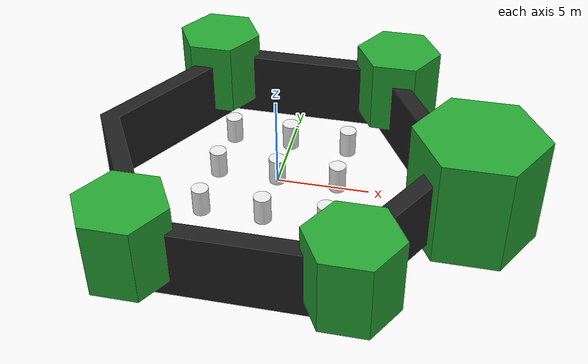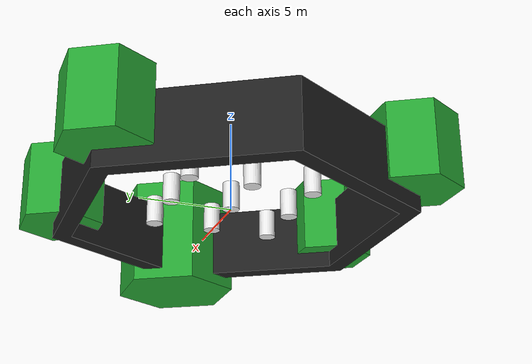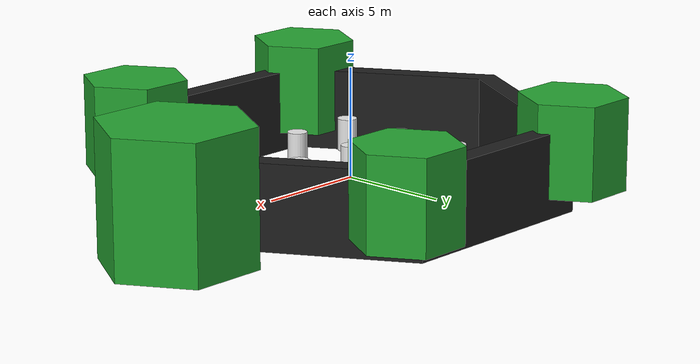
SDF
<sdf version='1.5'>
    <!-- Draw Circle -->
    <model name='ros_symbol'>
      <static>1</static>
      <link name='symbol'>
        <collision name='one_one'>
          <pose>-3.3 -3.3 0.75 0 0 0</pose>
          <geometry>
            <cylinder>
              <radius>0.45</radius>
              <length>1.5</length>
            </cylinder>
          </geometry>
          <max_contacts>10</max_contacts>
          <surface>
            <bounce/>
            <friction>
              <ode/>
            </friction>
            <contact>
              <ode/>
            </contact>
          </surface>
        </collision>

        <visual name='one_one'>
          <pose>-3.3 -3.3 0.75 0 0 0</pose>
          <geometry>
            <cylinder>
              <radius>0.45</radius>
              <length>1.5</length>
            </cylinder>
          </geometry>
          <material>
            <script>
              <uri>file://media/materials/scripts/gazebo.material</uri>
              <name>Gazebo/White</name>
            </script>
          </material>
        </visual>

        <collision name='one_two'>
          <pose>-3.3 0 0.75 0 0 0</pose>
          <geometry>
            <cylinder>
              <radius>0.45</radius>
              <length>1.5</length>
            </cylinder>
          </geometry>
          <max_contacts>10</max_contacts>
          <surface>
            <bounce/>
            <friction>
              <ode/>
            </friction>
            <contact>
              <ode/>
            </contact>
          </surface>
        </collision>

        <visual name='one_two'>
          <pose>-3.3 0 0.75 0 0 0</pose>
          <geometry>
            <cylinder>
              <radius>0.45</radius>
              <length>1.5</length>
            </cylinder>
          </geometry>
          <material>
            <script>
              <uri>file://media/materials/scripts/gazebo.material</uri>
              <name>Gazebo/White</name>
            </script>
          </material>
        </visual>

        <collision name='one_three'>
          <pose>-3.3 3.3 0.75 0 0 0</pose>
          <geometry>
            <cylinder>
              <radius>0.45</radius>
              <length>1.5</length>
            </cylinder>
          </geometry>
          <max_contacts>10</max_contacts>
          <surface>
            <bounce/>
            <friction>
              <ode/>
            </friction>
            <contact>
              <ode/>
            </contact>
          </surface>
        </collision>

        <visual name='one_three'>
          <pose>-3.3 3.3 0.75 0 0 0</pose>
          <geometry>
            <cylinder>
              <radius>0.45</radius>
              <length>1.5</length>
            </cylinder>
          </geometry>
          <material>
            <script>
              <uri>file://media/materials/scripts/gazebo.material</uri>
              <name>Gazebo/White</name>
            </script>
          </material>
        </visual>

        <collision name='two_one'>
          <pose>0 -3.3 0.75 0 0 0</pose>
          <geometry>
            <cylinder>
              <radius>0.45</radius>
              <length>1.5</length>
            </cylinder>
          </geometry>
          <max_contacts>10</max_contacts>
          <surface>
            <bounce/>
            <friction>
              <ode/>
            </friction>
            <contact>
              <ode/>
            </contact>
          </surface>
        </collision>

        <visual name='two_one'>
          <pose>0 -3.3 0.75 0 0 0</pose>
          <geometry>
            <cylinder>
              <radius>0.45</radius>
              <length>1.5</length>
            </cylinder>
          </geometry>
          <material>
            <script>
              <uri>file://media/materials/scripts/gazebo.material</uri>
              <name>Gazebo/White</name>
            </script>
          </material>
        </visual>

        <collision name='two_two'>
          <pose>0 0 0.75 0 0 0</pose>
          <geometry>
            <cylinder>
              <radius>0.45</radius>
              <length>1.5</length>
            </cylinder>
          </geometry>
          <max_contacts>10</max_contacts>
          <surface>
            <bounce/>
            <friction>
              <ode/>
            </friction>
            <contact>
              <ode/>
            </contact>
          </surface>
        </collision>

        <visual name='two_two'>
          <pose>0 0 0.75 0 0 0</pose>
          <geometry>
            <cylinder>
              <radius>0.45</radius>
              <length>1.5</length>
            </cylinder>
          </geometry>
          <material>
            <script>
              <uri>file://media/materials/scripts/gazebo.material</uri>
              <name>Gazebo/White</name>
            </script>
          </material>
        </visual>

        <collision name='two_three'>
          <pose>0 3.3 0.75 0 0 0</pose>
          <geometry>
            <cylinder>
              <radius>0.45</radius>
              <length>1.5</length>
            </cylinder>
          </geometry>
          <max_contacts>10</max_contacts>
          <surface>
            <bounce/>
            <friction>
              <ode/>
            </friction>
            <contact>
              <ode/>
            </contact>
          </surface>
        </collision>

        <visual name='two_three'>
          <pose>0 3.3 0.75 0 0 0</pose>
          <geometry>
            <cylinder>
              <radius>0.45</radius>
              <length>1.5</length>
            </cylinder>
          </geometry>
          <material>
            <script>
              <uri>file://media/materials/scripts/gazebo.material</uri>
              <name>Gazebo/White</name>
            </script>
          </material>
        </visual>

        <collision name='three_one'>
          <pose>3.3 -3.3 0.75 0 0 0</pose>
          <geometry>
            <cylinder>
              <radius>0.45</radius>
              <length>1.5</length>
            </cylinder>
          </geometry>
          <max_contacts>10</max_contacts>
          <surface>
            <bounce/>
            <friction>
              <ode/>
            </friction>
            <contact>
              <ode/>
            </contact>
          </surface>
        </collision>

        <visual name='three_one'>
          <pose>3.3 -3.3 0.75 0 0 0</pose>
          <geometry>
            <cylinder>
              <radius>0.45</radius>
              <length>1.5</length>
            </cylinder>
          </geometry>
          <material>
            <script>
              <uri>file://media/materials/scripts/gazebo.material</uri>
              <name>Gazebo/White</name>
            </script>
          </material>
        </visual>

        <collision name='three_two'>
          <pose>3.3 0 0.75 0 0 0</pose>
          <geometry>
            <cylinder>
              <radius>0.45</radius>
              <length>1.5</length>
            </cylinder>
          </geometry>
          <max_contacts>10</max_contacts>
          <surface>
            <bounce/>
            <friction>
              <ode/>
            </friction>
            <contact>
              <ode/>
            </contact>
          </surface>
        </collision>

        <visual name='three_two'>
          <pose>3.3 0 0.75 0 0 0</pose>
          <geometry>
            <cylinder>
              <radius>0.45</radius>
              <length>1.5</length>
            </cylinder>
          </geometry>
          <material>
            <script>
              <uri>file://media/materials/scripts/gazebo.material</uri>
              <name>Gazebo/White</name>
            </script>
          </material>
        </visual>

        <collision name='three_three'>
          <pose>3.3 3.3 0.75 0 0 0</pose>
          <geometry>
            <cylinder>
              <radius>0.45</radius>
              <length>1.5</length>
            </cylinder>
          </geometry>
          <max_contacts>10</max_contacts>
          <surface>
            <bounce/>
            <friction>
              <ode/>
            </friction>
            <contact>
              <ode/>
            </contact>
          </surface>
        </collision>

        <visual name='three_three'>
          <pose>3.3 3.3 0.75 0 0 0</pose>
          <geometry>
            <cylinder>
              <radius>0.45</radius>
              <length>1.5</length>
            </cylinder>
          </geometry>
          <material>
            <script>
              <uri>file://media/materials/scripts/gazebo.material</uri>
              <name>Gazebo/White</name>
            </script>
          </material>
        </visual>

        <!-- Draw Hexagon -->
        <collision name='head'>
          <pose>10.5 0 -1.5 0 0 0</pose>
          <geometry>
            <mesh>
              <uri>meshes/hexagon.dae</uri>
              <scale>2.4 2.4 2.4</scale>
            </mesh>
          </geometry>
          <max_contacts>10</max_contacts>
          <surface>
            <bounce/>
            <friction>
              <ode/>
            </friction>
            <contact>
              <ode/>
            </contact>
          </surface>
        </collision>

        <visual name='head'>
          <pose>10.5 0 -1.5 0 0 0</pose>
          <geometry>
            <mesh>
              <uri>meshes/hexagon.dae</uri>
              <scale>2.4 2.4 2.4</scale>
            </mesh>
          </geometry>
          <material>
            <script>
              <uri>file://media/materials/scripts/gazebo.material</uri>
              <name>Gazebo/Green</name>
            </script>
          </material>
        </visual>

        <collision name='left_hand'>
          <pose>5.4 8.1 0 0 0 0</pose>
          <geometry>
            <mesh>
              <uri>meshes/hexagon.dae</uri>
              <scale>1.65 1.65 1.65</scale>
            </mesh>
          </geometry>
          <max_contacts>10</max_contacts>
          <surface>
            <bounce/>
            <friction>
              <ode/>
            </friction>
            <contact>
              <ode/>
            </contact>
          </surface>
        </collision>

        <visual name='left_hand'>
          <pose>5.4 8.1 0 0 0 0</pose>
          <geometry>
            <mesh>
              <uri>meshes/hexagon.dae</uri>
              <scale>1.65 1.65 1.65</scale>
            </mesh>
          </geometry>
          <material>
            <script>
              <uri>file://media/materials/scripts/gazebo.material</uri>
              <name>Gazebo/Green</name>
            </script>
          </material>
        </visual>

        <collision name='right_hand'>
          <pose>5.4 -8.1 0 0 0 0</pose>
          <geometry>
            <mesh>
              <uri>meshes/hexagon.dae</uri>
              <scale>1.65 1.65 1.65</scale>
            </mesh>
          </geometry>
          <max_contacts>10</max_contacts>
          <surface>
            <bounce/>
            <friction>
              <ode/>
            </friction>
            <contact>
              <ode/>
            </contact>
          </surface>
        </collision>

        <visual name='right_hand'>
          <pose>5.4 -8.1 0 0 0 0</pose>
          <geometry>
            <mesh>
              <uri>meshes/hexagon.dae</uri>
              <scale>1.65 1.65 1.65</scale>
            </mesh>
          </geometry>
          <material>
            <script>
              <uri>file://media/materials/scripts/gazebo.material</uri>
              <name>Gazebo/Green</name>
            </script>
          </material>
        </visual>

        <collision name='left_foot'>
          <pose>-5.4 8.1 0 0 0 0</pose>
          <geometry>
            <mesh>
              <uri>meshes/hexagon.dae</uri>
              <scale>1.65 1.65 1.65</scale>
            </mesh>
          </geometry>
          <max_contacts>10</max_contacts>
          <surface>
            <bounce/>
            <friction>
              <ode/>
            </friction>
            <contact>
              <ode/>
            </contact>
          </surface>
        </collision>

        <visual name='left_foot'>
          <pose>-5.4 8.1 0 0 0 0</pose>
          <geometry>
            <mesh>
              <uri>meshes/hexagon.dae</uri>
              <scale>1.65 1.65 1.65</scale>
            </mesh>
          </geometry>
          <material>
            <script>
              <uri>file://media/materials/scripts/gazebo.material</uri>
              <name>Gazebo/Green</name>
            </script>
          </material>
        </visual>

        <collision name='right_foot'>
          <pose>-5.4 -8.1 0 0 0 0</pose>
          <geometry>
            <mesh>
              <uri>meshes/hexagon.dae</uri>
              <scale>1.65 1.65 1.65</scale>
            </mesh>
          </geometry>
          <max_contacts>10</max_contacts>
          <surface>
            <bounce/>
            <friction>
              <ode/>
            </friction>
            <contact>
              <ode/>
            </contact>
          </surface>
        </collision>

        <visual name='right_foot'>
          <pose>-5.4 -8.1 0 0 0 0</pose>
          <geometry>
            <mesh>
              <uri>meshes/hexagon.dae</uri>
              <scale>1.65 1.65 1.65</scale>
            </mesh>
          </geometry>
          <material>
            <script>
              <uri>file://media/materials/scripts/gazebo.material</uri>
              <name>Gazebo/Green</name>
            </script>
          </material>
        </visual>

        <!-- Draw Wall -->
        <collision name='body'>
        <pose>0 0 -0.9 0 0 -1.5708</pose>
        <geometry>
          <mesh>
            <uri>meshes/wall.dae</uri>
            <scale>0.75 0.75 0.75</scale>
          </mesh>
        </geometry>
        <max_contacts>10</max_contacts>
        <surface>
          <bounce/>
          <friction>
            <ode/>
          </friction>
          <contact>
            <ode/>
          </contact>
        </surface>
      </collision>

      <visual name='body'>
        <pose>0 0 -0.9 0 0 -1.5708</pose>
        <geometry>
          <mesh>
            <uri>meshes/wall.dae</uri>
            <scale>0.75 0.75 0.75</scale>
          </mesh>
        </geometry>
        <material>
          <script>
            <uri>file://media/materials/scripts/gazebo.material</uri>
            <name>Gazebo/FlatBlack</name>
          </script>
        </material>
      </visual>
    </link>
  </model>
</sdf>
